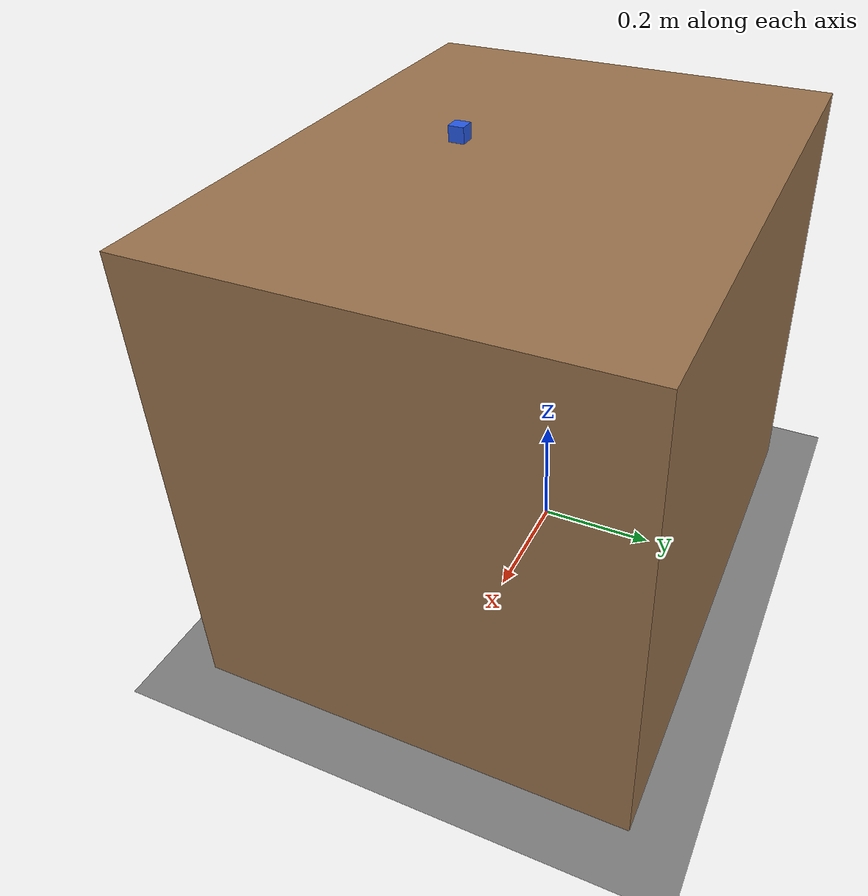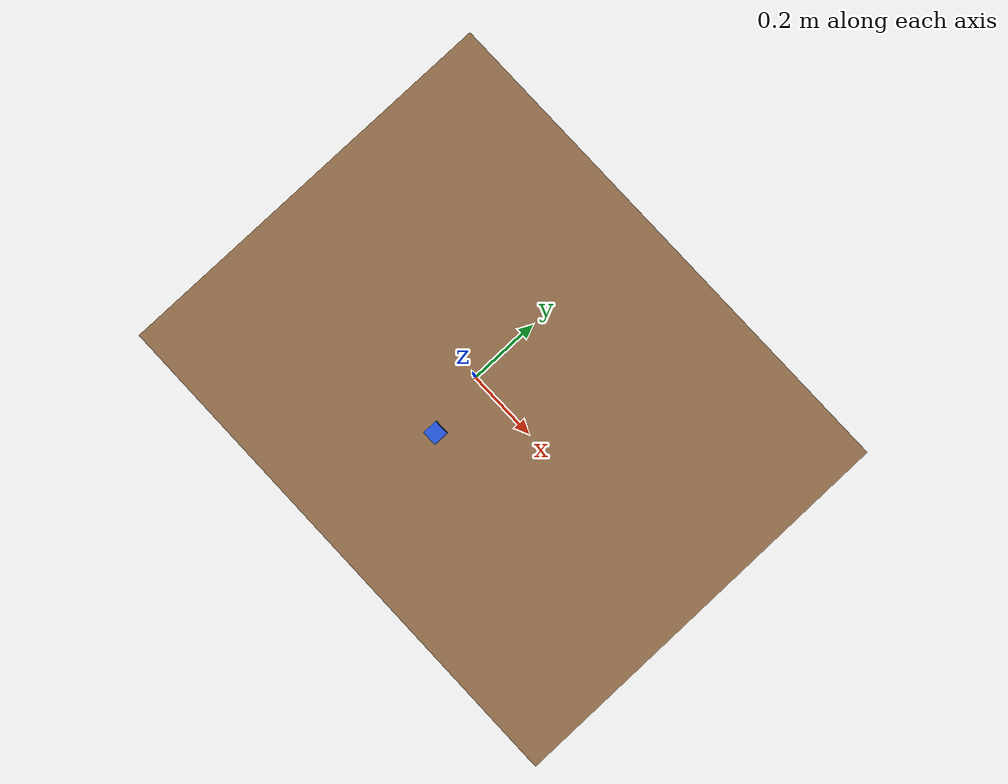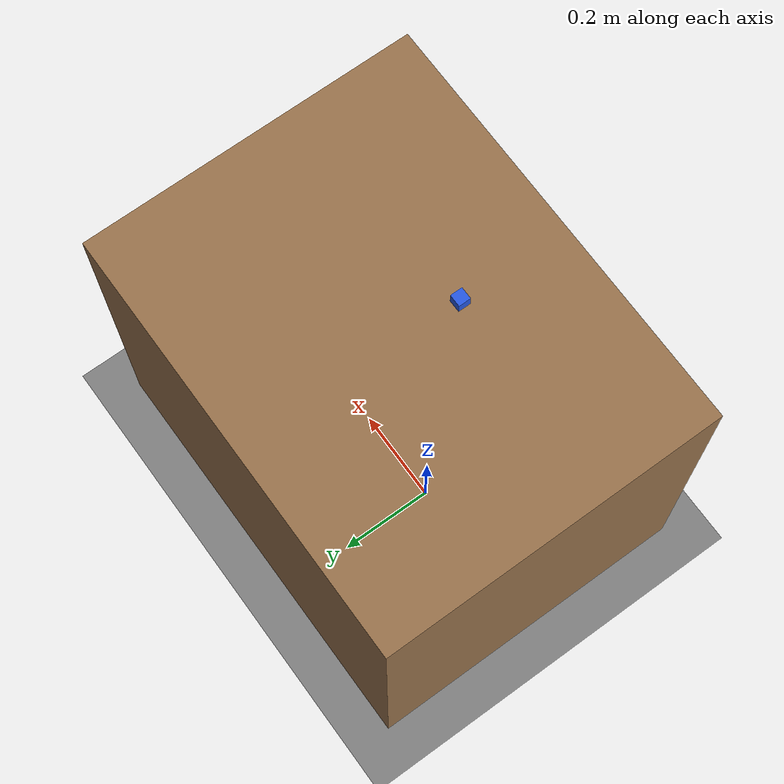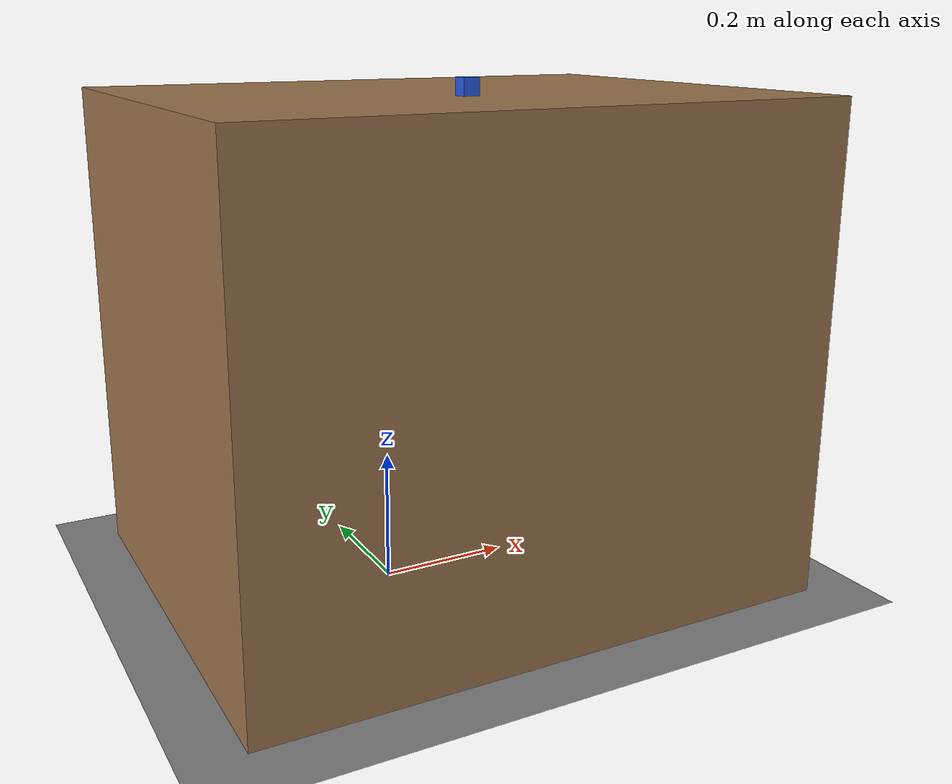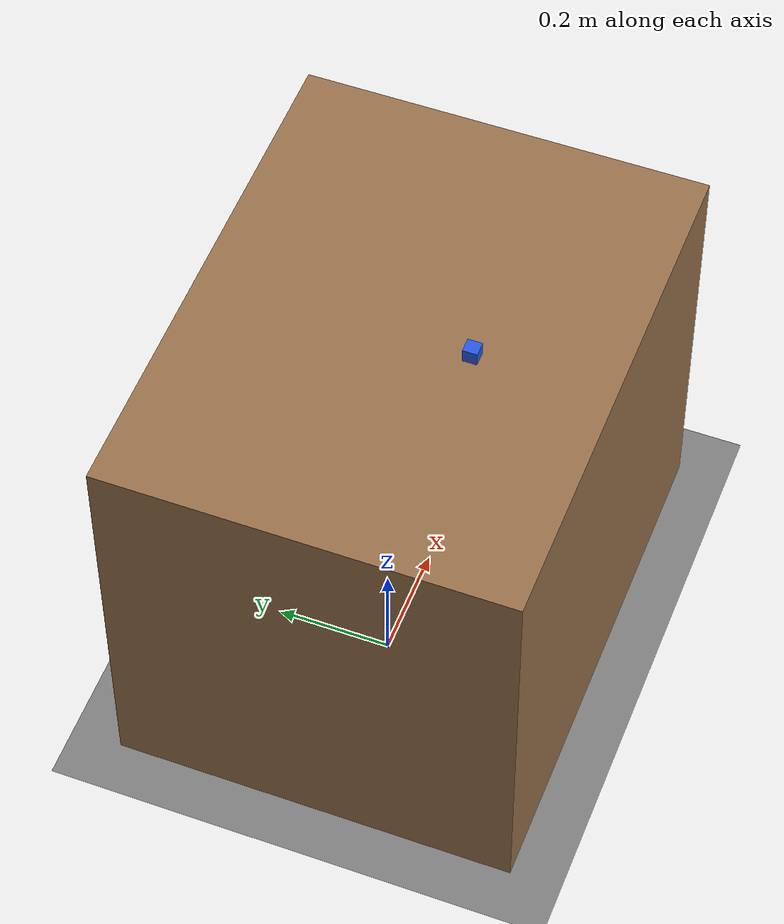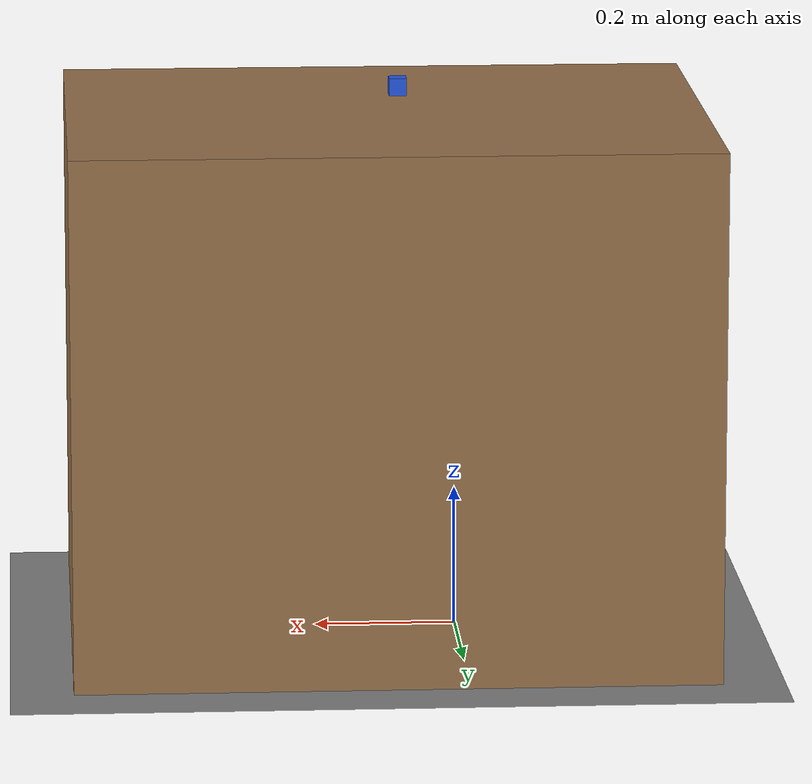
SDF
<?xml version="1.0"?>
<!--
  chendezhong_grasp3（陈德中）：反向对角搬运场景。
  机械臂由 launch 文件动态生成；目标物初始位姿必须与 grasp_chendezhong_grasp3.yaml 的 A3 点一致。
-->
<sdf version="1.8">
  <world name="grasp_world_chendezhong_grasp3">
    <physics name="default" type="ignored">
      <max_step_size>0.004</max_step_size>
      <real_time_factor>1.0</real_time_factor>
    </physics>
    <plugin filename="libignition-gazebo-physics-system.so" name="ignition::gazebo::systems::Physics"/>
    <plugin filename="libignition-gazebo-scene-broadcaster-system.so" name="ignition::gazebo::systems::SceneBroadcaster"/>
    <plugin filename="libignition-gazebo-user-commands-system.so" name="ignition::gazebo::systems::UserCommands"/>

    <light type="directional" name="sun">
      <cast_shadows>false</cast_shadows>
      <pose>0 0 10 0 0 0</pose>
      <diffuse>0.9 0.9 0.9 1</diffuse>
      <direction>-0.3 0.2 -0.9</direction>
    </light>

    <model name="ground">
      <static>true</static>
      <link name="ground_link">
        <collision name="c"><geometry><plane><normal>0 0 1</normal><size>10 10</size></plane></geometry></collision>
        <visual name="v"><geometry><plane><normal>0 0 1</normal><size>10 10</size></plane></geometry>
          <material><ambient>0.5 0.5 0.5 1</ambient><diffuse>0.5 0.5 0.5 1</diffuse></material>
        </visual>
      </link>
    </model>

    <!-- 桌子：实心方块，桌面高 0.75m -->
    <model name="table">
      <static>true</static>
      <pose>0.1 0 0.375 0 0 0</pose>
      <link name="table_link">
        <collision name="c"><geometry><box><size>0.9 0.7 0.75</size></box></geometry></collision>
        <visual name="v"><geometry><box><size>0.9 0.7 0.75</size></box></geometry>
          <material><ambient>0.6 0.45 0.3 1</ambient><diffuse>0.6 0.45 0.3 1</diffuse></material>
        </visual>
      </link>
    </model>

    <!-- 目标物：25mm、50g 方块，初始位姿 = grasp_chendezhong_grasp3.yaml 的 A3 点。 -->
    <model name="target_object">
      <pose>0.075 -0.115 0.7635 0 0 0</pose>
      <plugin filename="libignition-gazebo-odometry-publisher-system.so" name="ignition::gazebo::systems::OdometryPublisher">
        <odom_publish_frequency>30</odom_publish_frequency>
      </plugin>
      <link name="body">
        <inertial>
          <mass>0.05</mass>
          <inertia><ixx>5.2e-6</ixx><iyy>5.2e-6</iyy><izz>5.2e-6</izz><ixy>0</ixy><ixz>0</ixz><iyz>0</iyz></inertia>
        </inertial>
        <collision name="c">
          <geometry><box><size>0.025 0.025 0.025</size></box></geometry>
          <surface><friction><ode><mu>2.0</mu><mu2>2.0</mu2></ode></friction></surface>
        </collision>
        <visual name="v"><geometry><box><size>0.025 0.025 0.025</size></box></geometry>
          <material><ambient>0.15 0.35 0.9 1</ambient><diffuse>0.15 0.35 0.9 1</diffuse></material>
        </visual>
      </link>
    </model>
  </world>
</sdf>
